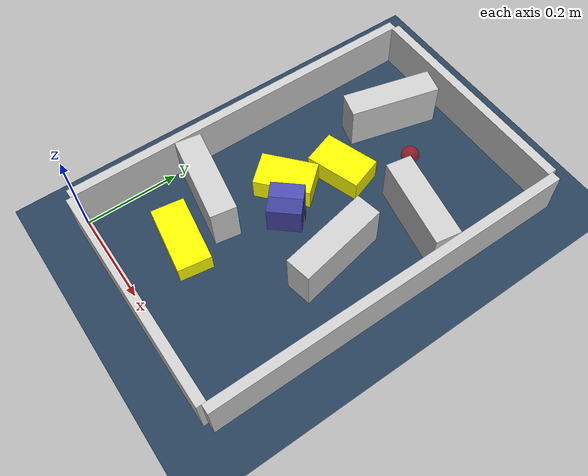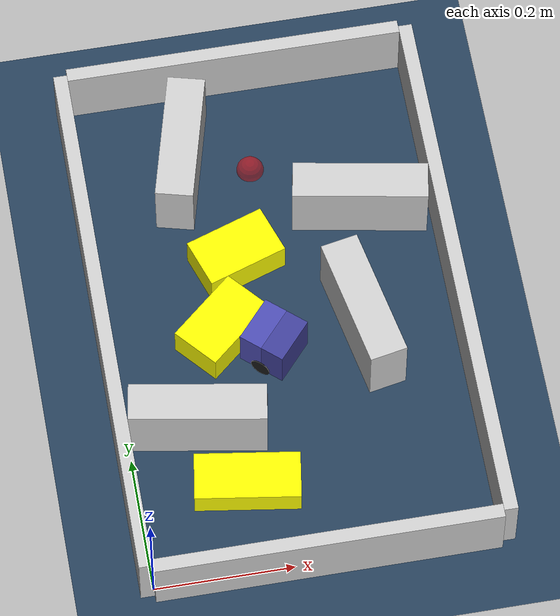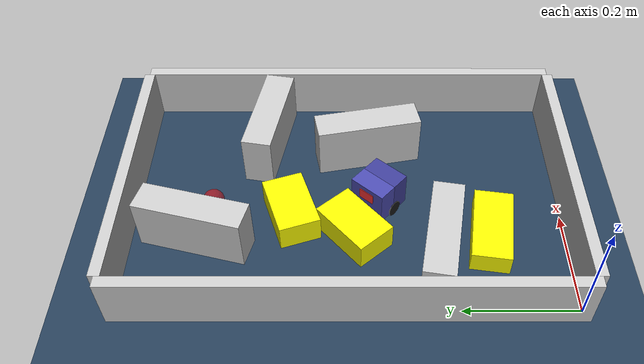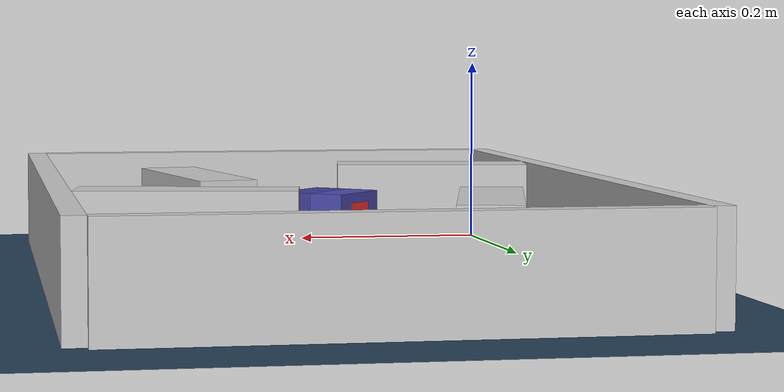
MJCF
<?xml version='1.0' encoding='utf-8'?>
<mujoco model="real_buildable">
  <compiler angle="degree" />
  <option timestep="0.002" integrator="implicitfast" iterations="100" cone="elliptic" />
  <default>
    <geom density="1" />
  </default>
  <asset>
    <texture builtin="gradient" height="3072" rgb1="0.3 0.5 0.7" rgb2="0 0 0" type="skybox" width="512" />
    <texture builtin="checker" height="300" mark="edge" markrgb="0.8 0.8 0.8" name="groundplane" rgb1="0.2 0.3 0.4" rgb2="0.1 0.2 0.3" type="2d" width="300" />
    <material name="groundplane" reflectance="0.2" texrepeat="5 5" texture="groundplane" texuniform="true" />
  </asset>
  <worldbody>
    <light dir="0 0 -1" directional="true" pos="0 0 1.5" />
    <geom name="floor" type="plane" condim="4" friction="0.5 0.005 0.001" material="groundplane" size="0 0 0.05" />
    <body name="walls">
      <geom name="wall_boundary_left" type="box" condim="4" friction="1.0 0.005 0.0001" rgba="0.8 0.8 0.8 1" pos="-0.010000 0.387500 0.050000" euler="0 0 0.000000" size="0.010000 0.397500 0.050000" />
      <geom name="wall_boundary_right" type="box" condim="4" friction="1.0 0.005 0.0001" rgba="0.8 0.8 0.8 1" pos="0.500000 0.387500 0.050000" euler="0 0 0.000000" size="0.010000 0.397500 0.050000" />
      <geom name="wall_boundary_bottom" type="box" condim="4" friction="1.0 0.005 0.0001" rgba="0.8 0.8 0.8 1" pos="0.245000 -0.010000 0.050000" euler="0 0 0.000000" size="0.245000 0.010000 0.050000" />
      <geom name="wall_boundary_top" type="box" condim="4" friction="1.0 0.005 0.0001" rgba="0.8 0.8 0.8 1" pos="0.245000 0.785000 0.050000" euler="0 0 0.000000" size="0.245000 0.010000 0.050000" />
      <geom name="wall_inner_1" type="box" condim="4" friction="1.0 0.005 0.0001" rgba="0.8 0.8 0.8 1" pos="0.100736 0.228068 0.050000" euler="0 0 170.319725" size="0.097500 0.027500 0.050000" />
      <geom name="wall_inner_2" type="box" condim="4" friction="1.0 0.005 0.0001" rgba="0.8 0.8 0.8 1" pos="0.359469 0.351333 0.050000" euler="0 0 101.064023" size="0.097500 0.027500 0.050000" />
      <geom name="wall_inner_3" type="box" condim="4" friction="1.0 0.005 0.0001" rgba="0.8 0.8 0.8 1" pos="0.389000 0.540000 0.050000" euler="0 0 169.900000" size="0.097500 0.027500 0.050000" />
      <geom name="wall_inner_4" type="box" condim="4" friction="1.0 0.005 0.0001" rgba="0.8 0.8 0.8 1" pos="0.146000 0.656000 0.050000" euler="0 0 75.500000" size="0.097500 0.027500 0.050000" />
    </body>
    <body name="car" pos="0.22696667495301817 0.33213799146763739 0.01" quat="0.35070925664810421 0 0 0.93648439244940662">
      <freejoint name="car_freejoint" />
      <inertial pos="0 0 0.0375" mass="0.35" diaginertia="0.000266 0.000266 0.000286" />
      <geom name="front_chassis_collision" type="box" pos="0.0175 0 0.0375" size="0.0175 0.035 0.0325" rgba="0.3 0.3 0.7 1" />
      <geom name="rear_chassis_collision" type="box" pos="-0.0175 0 0.0375" size="0.0175 0.035 0.0325" rgba="0.25 0.25 0.6 1" />
      <geom name="front_marker" type="box" pos="0.034 0 0.0505" size="0.002 0.015 0.01" rgba="1 0.2 0.2 1" contype="0" conaffinity="0" />
      <body name="rear_support_body" pos="-0.03 0 0.0025">
        <joint name="rear_caster_joint" type="ball" damping="0.0001" />
        <inertial pos="0 0 0" mass="0.025" diaginertia="0.000001 0.000001 0.000001" />
        <geom name="rear_support" type="sphere" pos="0 0 0" size="0.0025" friction="0 0 0" rgba="0.7 0.1 0.1 1" />
      </body>
      <body name="front_support_body" pos="0.03 0 0.0025">
        <joint name="front_caster_joint" type="ball" damping="0.0001" />
        <inertial pos="0 0 0" mass="0.025" diaginertia="0.000001 0.000001 0.000001" />
        <geom name="front_support" type="sphere" pos="0 0 0" size="0.0025" friction="0 0 0" rgba="0.1 0.7 0.1 1" />
      </body>
      <body name="left_wheel" pos="0 0.0375 0.015">
        <inertial pos="0 0 0" mass="0.05" diaginertia="0.000003 0.000006 0.000003" />
        <joint name="left_wheel_joint" type="hinge" axis="0 1 0" damping="0.01" armature="0.0001" />
        <geom name="left_wheel_collision" type="cylinder" size="0.015 0.0005" euler="90 0 0" rgba="0.1 0.1 0.1 1" />
      </body>
      <body name="right_wheel" pos="0 -0.0375 0.015">
        <inertial pos="0 0 0" mass="0.05" diaginertia="0.000003 0.000006 0.000003" />
        <joint name="right_wheel_joint" type="hinge" axis="0 1 0" damping="0.01" armature="0.0001" />
        <geom name="right_wheel_collision" type="cylinder" size="0.015 0.0005" euler="90 0 0" rgba="0.1 0.1 0.1 1" />
      </body>
    </body>
    <body name="obstacle_0_movable">
      <geom name="obstacle_0_movable" condim="4" pos="0.15949748516046394 0.37692124293596119 0.025000000000000001" friction="1 0.005 0.0001" rgba="1 1 0 1" size="0.037500 0.060000 0.025000" type="box" mass="0.1" quat="0.41414655827493557 0 0 0.91021021103315769" />
      <joint type="free" />
    </body>
    <body name="obstacle_1_movable">
      <geom name="obstacle_1_movable" condim="4" pos="0.19923038576281571 0.49078853338049205 0.025000000000000001" friction="1 0.005 0.0001" rgba="1 1 0 1" size="0.037500 0.060000 0.025000" type="box" mass="0.1" quat="0.81372322595068691 0 0 -0.58125253681029843" />
      <joint type="free" />
    </body>
    <body name="obstacle_2_movable">
      <geom name="obstacle_2_movable" condim="4" pos="0.15492500000000003 0.13243500000000014 0.02" friction="1 0.005 0.0001" rgba="1 1 0 1" size="0.035000 0.075000 0.020000" type="box" mass="0.1" quat="0.75770306533849663 0 0 0.6525994673432135" />
      <joint type="free" />
    </body>
    <site name="goal" type="sphere" pos="0.245000 0.640000 0.0" size="0.02" rgba="1 0 0 0.5" />
  </worldbody>
  <actuator>
    <velocity name="left_wheel_drive" joint="left_wheel_joint" ctrlrange="-25 25" kv="0.75" forcerange="-0.5 0.5" />
    <velocity name="right_wheel_drive" joint="right_wheel_joint" ctrlrange="-25 25" kv="0.75" forcerange="-0.5 0.5" />
  </actuator>
</mujoco>
